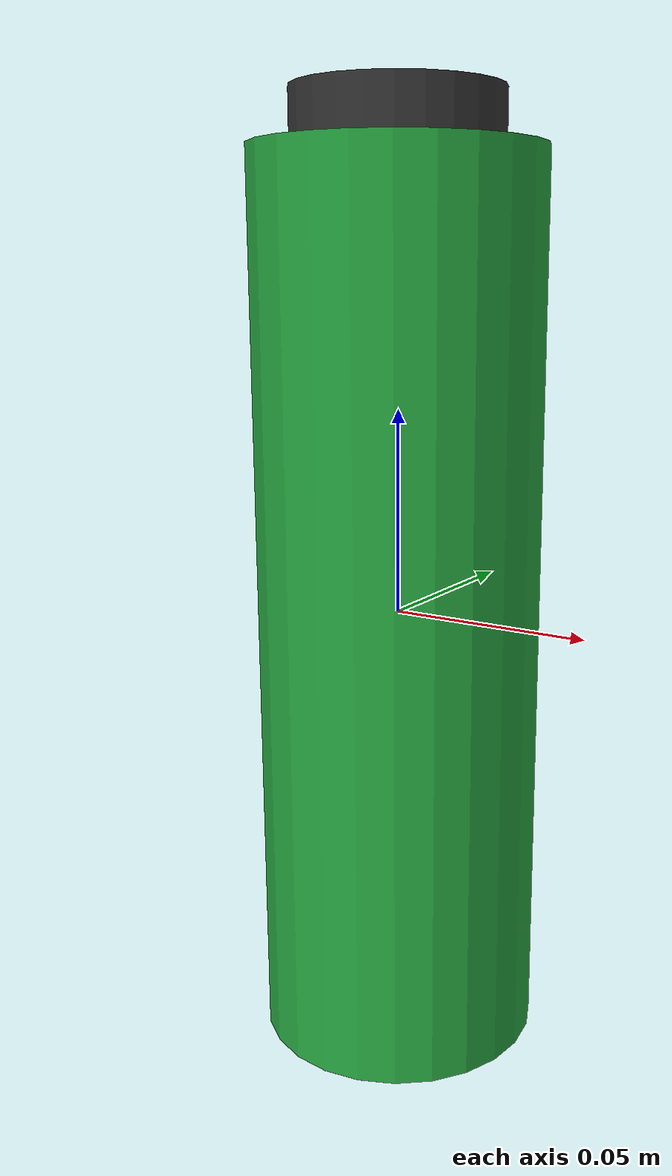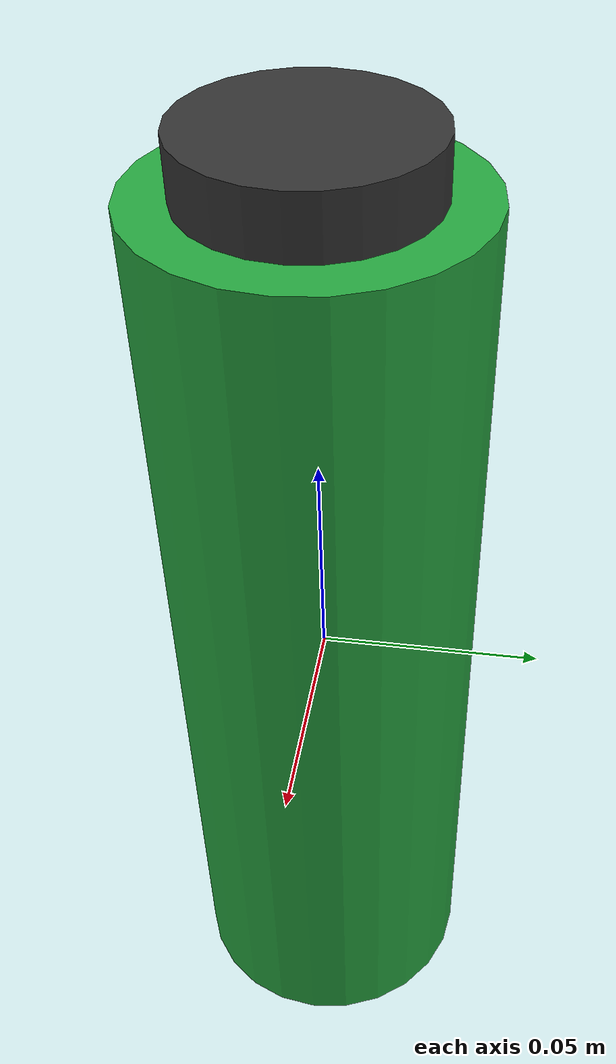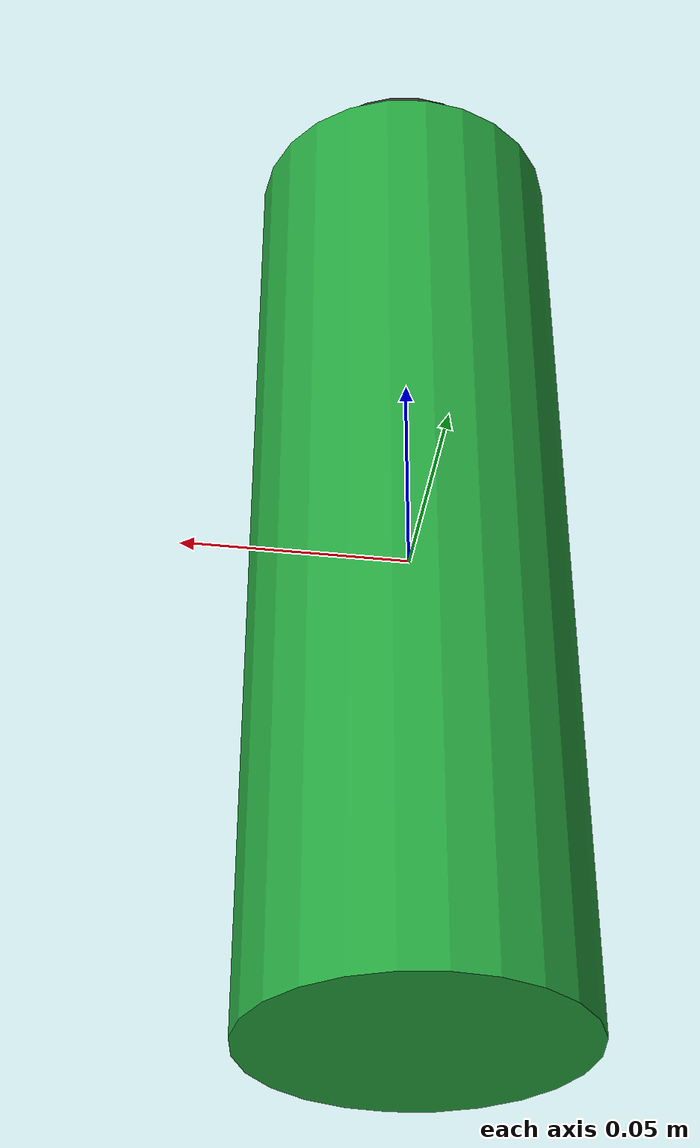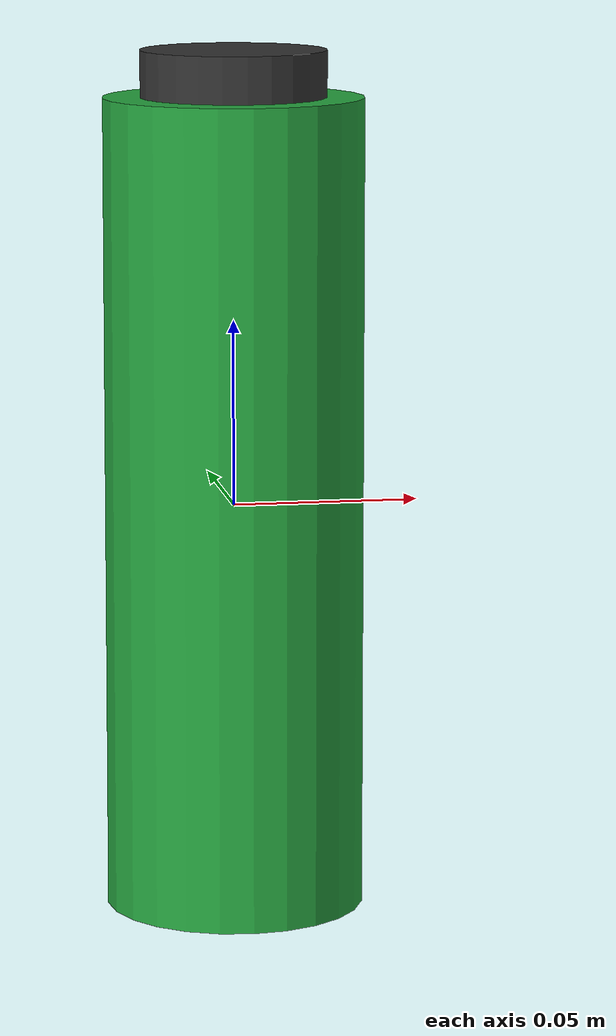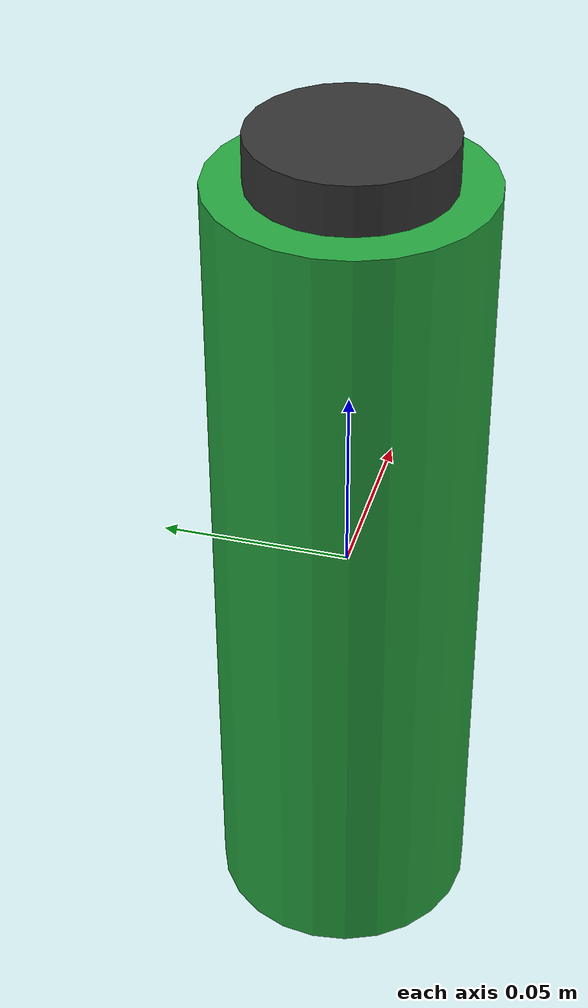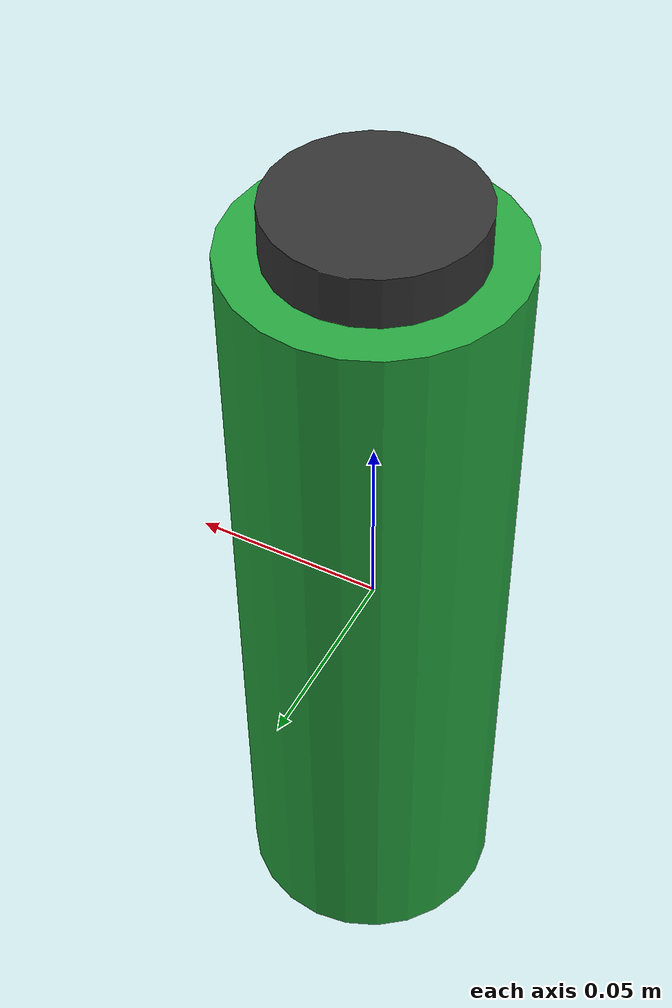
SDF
<?xml version="1.0"?>
<!-- Botella tumbada en el suelo. Pose final la fija el spawn (rotada con
     pitch≈1.5708 para que quede acostada a lo largo del eje X). -->
<sdf version="1.8">
  <model name="bottle_spilled">
    <link name="link">
      <inertial>
        <mass>0.3</mass>
        <inertia>
          <ixx>0.001</ixx><iyy>0.001</iyy><izz>0.0005</izz>
          <ixy>0</ixy><ixz>0</ixz><iyz>0</iyz>
        </inertia>
      </inertial>
      <collision name="c">
        <geometry><cylinder><radius>0.035</radius><length>0.22</length></cylinder></geometry>
      </collision>
      <visual name="body">
        <geometry><cylinder><radius>0.035</radius><length>0.22</length></cylinder></geometry>
        <material>
          <ambient>0.10 0.45 0.18 1</ambient>
          <diffuse>0.15 0.65 0.25 1</diffuse>
          <specular>0.2 0.4 0.2 1</specular>
        </material>
      </visual>
      <visual name="cap">
        <pose>0 0 0.115 0 0 0</pose>
        <geometry><cylinder><radius>0.025</radius><length>0.015</length></cylinder></geometry>
        <material>
          <ambient>0.15 0.15 0.15 1</ambient>
          <diffuse>0.20 0.20 0.20 1</diffuse>
        </material>
      </visual>
    </link>
  </model>
</sdf>
